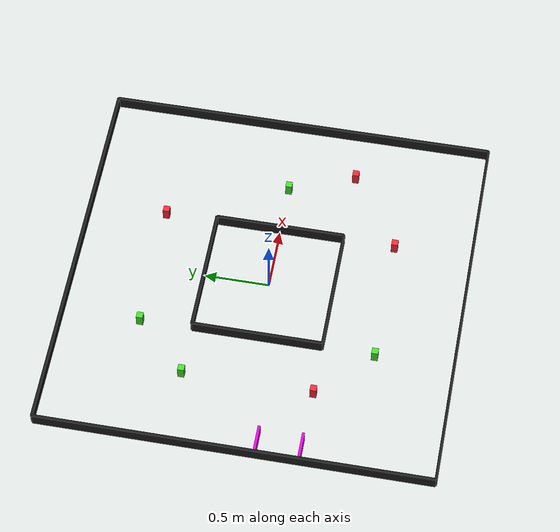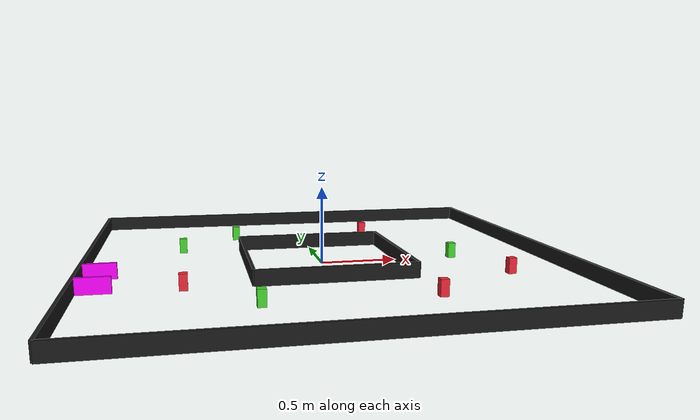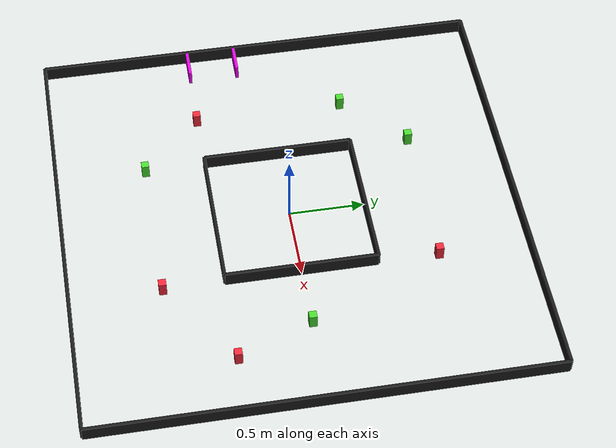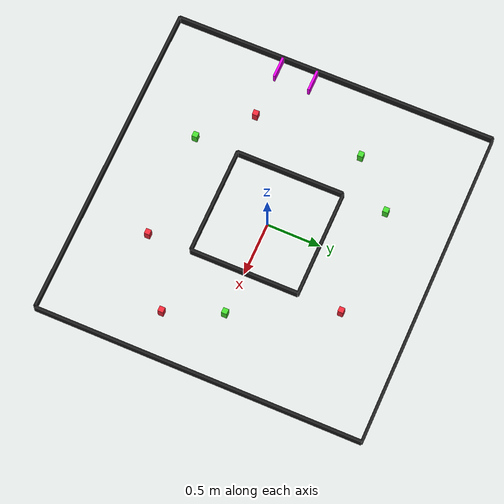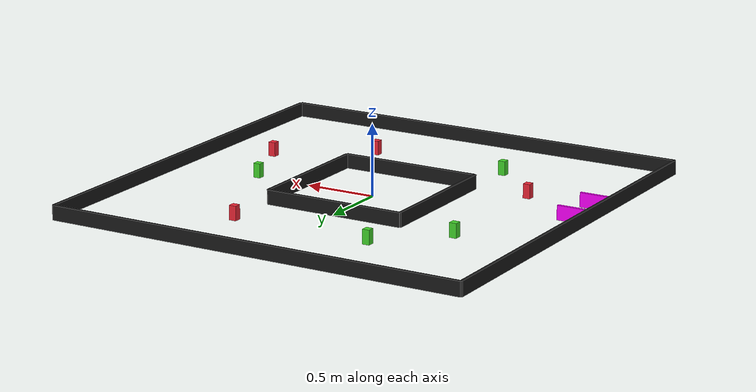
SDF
<sdf version="1.7">
 <world name="wro_fe_2026">
  <physics name="1ms" type="ignored">
   <max_step_size>0.001</max_step_size>
   <real_time_factor>1.0</real_time_factor>
  </physics>
  <plugin filename="libignition-gazebo-physics-system.so" name="ignition::gazebo::systems::Physics"/>
  <plugin filename="libignition-gazebo-user-commands-system.so" name="ignition::gazebo::systems::UserCommands"/>
  <plugin filename="libignition-gazebo-sensors-system.so" name="ignition::gazebo::systems::Sensors">
   <render_engine>ogre2</render_engine>
  </plugin>
  <plugin filename="libignition-gazebo-scene-broadcaster-system.so" name="ignition::gazebo::systems::SceneBroadcaster"/>
  <plugin filename="gz-sim-imu-system" name="gz::sim::systems::Imu"/>
  <light type="directional" name="sun">
   <pose>0 0 10 0 0 0</pose>
   <diffuse>0.8 0.8 0.8 1</diffuse>
   <specular>0.2 0.2 0.2 1</specular>
   <attenuation>
    <range>1000</range>
    <constant>0.9</constant>
    <linear>0.01</linear>
    <quadratic>0.001</quadratic>
   </attenuation>
   <direction>-0.5 0.1 -0.9</direction>
  </light>
  <model name="inner_walls">
   <static>true</static>
   <link name="north">
    <pose>0 1.5 0.05 0 0 0</pose>
    <collision name="c"><geometry><box><size>3.0 0.02 0.10</size></box></geometry></collision>
    <visual name="v">
     <geometry><box><size>3.0 0.02 0.10</size></box></geometry>
     <material><ambient>0.1 0.1 0.1 1</ambient><diffuse>0.1 0.1 0.1 1</diffuse></material>
    </visual>
   </link>
   <link name="south">
    <pose>0 -1.5 0.05 0 0 0</pose>
    <collision name="c"><geometry><box><size>3.0 0.02 0.10</size></box></geometry></collision>
    <visual name="v">
     <geometry><box><size>3.0 0.02 0.10</size></box></geometry>
     <material><ambient>0.1 0.1 0.1 1</ambient><diffuse>0.1 0.1 0.1 1</diffuse></material>
    </visual>
   </link>
   <link name="east">
    <pose>1.5 0 0.05 0 0 0</pose>
    <collision name="c"><geometry><box><size>0.02 3.0 0.10</size></box></geometry></collision>
    <visual name="v">
     <geometry><box><size>0.02 3.0 0.10</size></box></geometry>
     <material><ambient>0.1 0.1 0.1 1</ambient><diffuse>0.1 0.1 0.1 1</diffuse></material>
    </visual>
   </link>
   <link name="west">
    <pose>-1.5 0 0.05 0 0 0</pose>
    <collision name="c"><geometry><box><size>0.02 3.0 0.10</size></box></geometry></collision>
    <visual name="v">
     <geometry><box><size>0.02 3.0 0.10</size></box></geometry>
     <material><ambient>0.1 0.1 0.1 1</ambient><diffuse>0.1 0.1 0.1 1</diffuse></material>
    </visual>
   </link>
  </model>
  <model name="center_block">
   <static>true</static>
   <link name="north">
    <pose>0 0.5 0.05 0 0 0</pose>
    <collision name="c"><geometry><box><size>1.0 0.02 0.10</size></box></geometry></collision>
    <visual name="v">
     <geometry><box><size>1.0 0.02 0.10</size></box></geometry>
     <material><ambient>0.1 0.1 0.1 1</ambient><diffuse>0.1 0.1 0.1 1</diffuse></material>
    </visual>
   </link>
   <link name="south">
    <pose>0 -0.5 0.05 0 0 0</pose>
    <collision name="c"><geometry><box><size>1.0 0.02 0.10</size></box></geometry></collision>
    <visual name="v">
     <geometry><box><size>1.0 0.02 0.10</size></box></geometry>
     <material><ambient>0.1 0.1 0.1 1</ambient><diffuse>0.1 0.1 0.1 1</diffuse></material>
    </visual>
   </link>
   <link name="east">
    <pose>0.5 0 0.05 0 0 0</pose>
    <collision name="c"><geometry><box><size>0.02 1.0 0.10</size></box></geometry></collision>
    <visual name="v">
     <geometry><box><size>0.02 1.0 0.10</size></box></geometry>
     <material><ambient>0.1 0.1 0.1 1</ambient><diffuse>0.1 0.1 0.1 1</diffuse></material>
    </visual>
   </link>
   <link name="west">
    <pose>-0.5 0 0.05 0 0 0</pose>
    <collision name="c"><geometry><box><size>0.02 1.0 0.10</size></box></geometry></collision>
    <visual name="v">
     <geometry><box><size>0.02 1.0 0.10</size></box></geometry>
     <material><ambient>0.1 0.1 0.1 1</ambient><diffuse>0.1 0.1 0.1 1</diffuse></material>
    </visual>
   </link>
  </model>
  <model name="traffic_signs_green_1">
   <static>true</static>
   <link name="green_1">
    <pose>-0.9 0.5 0.05 0 0 0</pose>
    <collision name="c"><geometry><box><size>0.05 0.05 0.10</size></box></geometry></collision>
    <visual name="v">
     <geometry><box><size>0.05 0.05 0.10</size></box></geometry>
     <material><ambient>0.267 0.839 0.173 1</ambient><diffuse>0.267 0.839 0.173 1</diffuse></material>
    </visual>
   </link>
  </model>
  <model name="traffic_signs_green_2">
   <static>true</static>
   <link name="green_2">
    <pose>0.90 0 0.05 0 0 0</pose>
    <collision name="c"><geometry><box><size>0.05 0.05 0.10</size></box></geometry></collision>
    <visual name="v">
     <geometry><box><size>0.05 0.05 0.10</size></box></geometry>
     <material><ambient>0.267 0.839 0.173 1</ambient><diffuse>0.267 0.839 0.173 1</diffuse></material>
    </visual>
   </link>
  </model>
  <model name="traffic_signs_green_3">
   <static>true</static>
   <link name="green_3">
    <pose>-0.5 -0.90 0.05 0 0 0</pose>
    <collision name="c"><geometry><box><size>0.05 0.05 0.10</size></box></geometry></collision>
    <visual name="v">
     <geometry><box><size>0.05 0.05 0.10</size></box></geometry>
     <material><ambient>0.267 0.839 0.173 1</ambient><diffuse>0.267 0.839 0.173 1</diffuse></material>
    </visual>
   </link>
  </model>
  <model name="traffic_signs_green_4">
   <static>true</static>
   <link name="green_4">
    <pose>-0.5 0.90 0.05 0 0 0</pose>
    <collision name="c"><geometry><box><size>0.05 0.05 0.10</size></box></geometry></collision>
    <visual name="v">
     <geometry><box><size>0.05 0.05 0.10</size></box></geometry>
     <material><ambient>0.267 0.839 0.173 1</ambient><diffuse>0.267 0.839 0.173 1</diffuse></material>
    </visual>
   </link>
  </model>
  <model name="traffic_signs_red_1">
   <static>true</static>
   <link name="red_1">
    <pose>0.5 -0.90 0.05 0 0 0</pose>
    <collision name="c"><geometry><box><size>0.05 0.05 0.10</size></box></geometry></collision>
    <visual name="v">
     <geometry><box><size>0.05 0.05 0.10</size></box></geometry>
     <material><ambient>0.933 0.153 0.216 1</ambient><diffuse>0.933 0.153 0.216 1</diffuse></material>
    </visual>
   </link>
  </model>
  <model name="traffic_signs_red_2">
   <static>true</static>
   <link name="red_2">
    <pose>1.1 -0.5 0.05 0 0 0</pose>
    <collision name="c"><geometry><box><size>0.05 0.05 0.10</size></box></geometry></collision>
    <visual name="v">
     <geometry><box><size>0.05 0.05 0.10</size></box></geometry>
     <material><ambient>0.933 0.153 0.216 1</ambient><diffuse>0.933 0.153 0.216 1</diffuse></material>
    </visual>
   </link>
  </model>
  <model name="traffic_signs_red_3">
   <static>true</static>
   <link name="red_3">
    <pose>-0.9 -0.5 0.05 0 0 0</pose>
    <collision name="c"><geometry><box><size>0.05 0.05 0.10</size></box></geometry></collision>
    <visual name="v">
     <geometry><box><size>0.05 0.05 0.10</size></box></geometry>
     <material><ambient>0.933 0.153 0.216 1</ambient><diffuse>0.933 0.153 0.216 1</diffuse></material>
    </visual>
   </link>
  </model>
  <model name="traffic_signs_red_4">
   <static>true</static>
   <link name="red_4">
    <pose>0.5 0.90 0.05 0 0 0</pose>
    <collision name="c"><geometry><box><size>0.05 0.05 0.10</size></box></geometry></collision>
    <visual name="v">
     <geometry><box><size>0.05 0.05 0.10</size></box></geometry>
     <material><ambient>0.933 0.153 0.216 1</ambient><diffuse>0.933 0.153 0.216 1</diffuse></material>
    </visual>
   </link>
  </model>
  <model name="parking_lot">
   <static>true</static>
   <link name="parking_left">
    <pose>-1.39015 -0.162888 0.05 0 0 0</pose>
    <collision name="c"><geometry><box><size>0.20 0.02 0.10</size></box></geometry></collision>
    <visual name="v">
     <geometry><box><size>0.20 0.02 0.10</size></box></geometry>
     <material><ambient>1 0 1 1</ambient><diffuse>1 0 1 1</diffuse></material>
    </visual>
   </link>
   <link name="parking_right">
    <pose>-1.39015 -0.492888 0.05 0 0 0</pose>
    <collision name="c"><geometry><box><size>0.20 0.02 0.10</size></box></geometry></collision>
    <visual name="v">
     <geometry><box><size>0.20 0.02 0.10</size></box></geometry>
     <material><ambient>1 0 1 1</ambient><diffuse>1 0 1 1</diffuse></material>
    </visual>
   </link>
  </model>
 </world>
</sdf>
